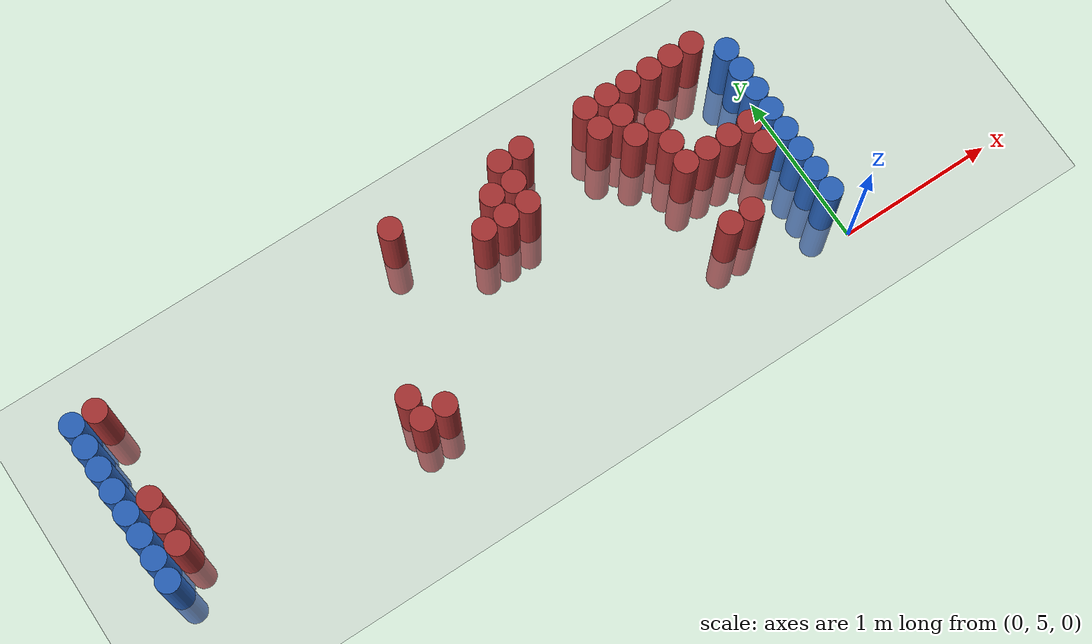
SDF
<sdf version="1.6">
 <world name="default">
  <model name="ground_plane">
   <static>1</static>
   <link name="link">
    <collision name="collision">
     <geometry><plane><normal>0 0 1</normal><size>100 100</size></plane></geometry>
     <surface><friction><ode><mu>100</mu><mu2>50</mu2></ode></friction></surface>
    </collision>
    <visual name="visual">
     <cast_shadows>0</cast_shadows>
     <geometry><plane><normal>0 0 1</normal><size>100 100</size></plane></geometry>
     <material>
      <script><uri>file://media/materials/scripts/gazebo.material</uri><name>Gazebo/Grey</name></script>
     </material>
    </visual>
   </link>
  </model>
  <model name="unit_cylinder_97">
   <static>1</static>
   <pose>-4.425000 5.325000 0.000000 0.000000 0.000000 0.000000</pose>
   <link name="link">
    <inertial>
     <mass>1</mass>
     <inertia><ixx>0.145833</ixx><ixy>0</ixy><ixz>0</ixz><iyy>0.145833</iyy><iyz>0</iyz><izz>0.125</izz></inertia>
    </inertial>
    <collision name="collision">
     <geometry><cylinder><radius>0.075000</radius><length>1</length></cylinder></geometry>
    </collision>
    <visual name="visual">
     <geometry><cylinder><radius>0.075000</radius><length>1</length></cylinder></geometry>
     <material>
      <ambient>0.152000 0.379000 0.720000 1</ambient>
      <diffuse>0.152000 0.379000 0.720000 1</diffuse>
     </material>
     <material>
      <script><name>Gazebo/Grey</name><uri>file://media/materials/scripts/gazebo.material</uri></script>
     </material>
    </visual>
   </link>
  </model>
  <model name="unit_cylinder_98">
   <static>1</static>
   <pose>-4.425000 5.475000 0.000000 0.000000 0.000000 0.000000</pose>
   <link name="link">
    <inertial>
     <mass>1</mass>
     <inertia><ixx>0.145833</ixx><ixy>0</ixy><ixz>0</ixz><iyy>0.145833</iyy><iyz>0</iyz><izz>0.125</izz></inertia>
    </inertial>
    <collision name="collision">
     <geometry><cylinder><radius>0.075000</radius><length>1</length></cylinder></geometry>
    </collision>
    <visual name="visual">
     <geometry><cylinder><radius>0.075000</radius><length>1</length></cylinder></geometry>
     <material>
      <ambient>0.152000 0.379000 0.720000 1</ambient>
      <diffuse>0.152000 0.379000 0.720000 1</diffuse>
     </material>
     <material>
      <script><name>Gazebo/Grey</name><uri>file://media/materials/scripts/gazebo.material</uri></script>
     </material>
    </visual>
   </link>
  </model>
  <model name="unit_cylinder_99">
   <static>1</static>
   <pose>-4.425000 5.625000 0.000000 0.000000 0.000000 0.000000</pose>
   <link name="link">
    <inertial>
     <mass>1</mass>
     <inertia><ixx>0.145833</ixx><ixy>0</ixy><ixz>0</ixz><iyy>0.145833</iyy><iyz>0</iyz><izz>0.125</izz></inertia>
    </inertial>
    <collision name="collision">
     <geometry><cylinder><radius>0.075000</radius><length>1</length></cylinder></geometry>
    </collision>
    <visual name="visual">
     <geometry><cylinder><radius>0.075000</radius><length>1</length></cylinder></geometry>
     <material>
      <ambient>0.152000 0.379000 0.720000 1</ambient>
      <diffuse>0.152000 0.379000 0.720000 1</diffuse>
     </material>
     <material>
      <script><name>Gazebo/Grey</name><uri>file://media/materials/scripts/gazebo.material</uri></script>
     </material>
    </visual>
   </link>
  </model>
  <model name="unit_cylinder_100">
   <static>1</static>
   <pose>-4.425000 5.775000 0.000000 0.000000 0.000000 0.000000</pose>
   <link name="link">
    <inertial>
     <mass>1</mass>
     <inertia><ixx>0.145833</ixx><ixy>0</ixy><ixz>0</ixz><iyy>0.145833</iyy><iyz>0</iyz><izz>0.125</izz></inertia>
    </inertial>
    <collision name="collision">
     <geometry><cylinder><radius>0.075000</radius><length>1</length></cylinder></geometry>
    </collision>
    <visual name="visual">
     <geometry><cylinder><radius>0.075000</radius><length>1</length></cylinder></geometry>
     <material>
      <ambient>0.152000 0.379000 0.720000 1</ambient>
      <diffuse>0.152000 0.379000 0.720000 1</diffuse>
     </material>
     <material>
      <script><name>Gazebo/Grey</name><uri>file://media/materials/scripts/gazebo.material</uri></script>
     </material>
    </visual>
   </link>
  </model>
  <model name="unit_cylinder_101">
   <static>1</static>
   <pose>-4.425000 5.925000 0.000000 0.000000 0.000000 0.000000</pose>
   <link name="link">
    <inertial>
     <mass>1</mass>
     <inertia><ixx>0.145833</ixx><ixy>0</ixy><ixz>0</ixz><iyy>0.145833</iyy><iyz>0</iyz><izz>0.125</izz></inertia>
    </inertial>
    <collision name="collision">
     <geometry><cylinder><radius>0.075000</radius><length>1</length></cylinder></geometry>
    </collision>
    <visual name="visual">
     <geometry><cylinder><radius>0.075000</radius><length>1</length></cylinder></geometry>
     <material>
      <ambient>0.152000 0.379000 0.720000 1</ambient>
      <diffuse>0.152000 0.379000 0.720000 1</diffuse>
     </material>
     <material>
      <script><name>Gazebo/Grey</name><uri>file://media/materials/scripts/gazebo.material</uri></script>
     </material>
    </visual>
   </link>
  </model>
  <model name="unit_cylinder_102">
   <static>1</static>
   <pose>-4.425000 6.075000 0.000000 0.000000 0.000000 0.000000</pose>
   <link name="link">
    <inertial>
     <mass>1</mass>
     <inertia><ixx>0.145833</ixx><ixy>0</ixy><ixz>0</ixz><iyy>0.145833</iyy><iyz>0</iyz><izz>0.125</izz></inertia>
    </inertial>
    <collision name="collision">
     <geometry><cylinder><radius>0.075000</radius><length>1</length></cylinder></geometry>
    </collision>
    <visual name="visual">
     <geometry><cylinder><radius>0.075000</radius><length>1</length></cylinder></geometry>
     <material>
      <ambient>0.152000 0.379000 0.720000 1</ambient>
      <diffuse>0.152000 0.379000 0.720000 1</diffuse>
     </material>
     <material>
      <script><name>Gazebo/Grey</name><uri>file://media/materials/scripts/gazebo.material</uri></script>
     </material>
    </visual>
   </link>
  </model>
  <model name="unit_cylinder_103">
   <static>1</static>
   <pose>-4.425000 6.225000 0.000000 0.000000 0.000000 0.000000</pose>
   <link name="link">
    <inertial>
     <mass>1</mass>
     <inertia><ixx>0.145833</ixx><ixy>0</ixy><ixz>0</ixz><iyy>0.145833</iyy><iyz>0</iyz><izz>0.125</izz></inertia>
    </inertial>
    <collision name="collision">
     <geometry><cylinder><radius>0.075000</radius><length>1</length></cylinder></geometry>
    </collision>
    <visual name="visual">
     <geometry><cylinder><radius>0.075000</radius><length>1</length></cylinder></geometry>
     <material>
      <ambient>0.152000 0.379000 0.720000 1</ambient>
      <diffuse>0.152000 0.379000 0.720000 1</diffuse>
     </material>
     <material>
      <script><name>Gazebo/Grey</name><uri>file://media/materials/scripts/gazebo.material</uri></script>
     </material>
    </visual>
   </link>
  </model>
  <model name="unit_cylinder_104">
   <static>1</static>
   <pose>-4.425000 6.375000 0.000000 0.000000 0.000000 0.000000</pose>
   <link name="link">
    <inertial>
     <mass>1</mass>
     <inertia><ixx>0.145833</ixx><ixy>0</ixy><ixz>0</ixz><iyy>0.145833</iyy><iyz>0</iyz><izz>0.125</izz></inertia>
    </inertial>
    <collision name="collision">
     <geometry><cylinder><radius>0.075000</radius><length>1</length></cylinder></geometry>
    </collision>
    <visual name="visual">
     <geometry><cylinder><radius>0.075000</radius><length>1</length></cylinder></geometry>
     <material>
      <ambient>0.152000 0.379000 0.720000 1</ambient>
      <diffuse>0.152000 0.379000 0.720000 1</diffuse>
     </material>
     <material>
      <script><name>Gazebo/Grey</name><uri>file://media/materials/scripts/gazebo.material</uri></script>
     </material>
    </visual>
   </link>
  </model>
  <model name="unit_cylinder_126">
   <static>1</static>
   <pose>-4.275000 5.475000 0.000000 0.000000 0.000000 0.000000</pose>
   <link name="link">
    <inertial>
     <mass>1</mass>
     <inertia><ixx>0.145833</ixx><ixy>0</ixy><ixz>0</ixz><iyy>0.145833</iyy><iyz>0</iyz><izz>0.125</izz></inertia>
    </inertial>
    <collision name="collision">
     <geometry><cylinder><radius>0.075000</radius><length>1</length></cylinder></geometry>
    </collision>
    <visual name="visual">
     <geometry><cylinder><radius>0.075000</radius><length>1</length></cylinder></geometry>
     <material>
      <ambient>0.648000 0.192000 0.192000 1</ambient>
      <diffuse>0.648000 0.192000 0.192000 1</diffuse>
     </material>
     <material>
      <script><name>Gazebo/Grey</name><uri>file://media/materials/scripts/gazebo.material</uri></script>
     </material>
    </visual>
   </link>
  </model>
  <model name="unit_cylinder_127">
   <static>1</static>
   <pose>-4.275000 5.625000 0.000000 0.000000 0.000000 0.000000</pose>
   <link name="link">
    <inertial>
     <mass>1</mass>
     <inertia><ixx>0.145833</ixx><ixy>0</ixy><ixz>0</ixz><iyy>0.145833</iyy><iyz>0</iyz><izz>0.125</izz></inertia>
    </inertial>
    <collision name="collision">
     <geometry><cylinder><radius>0.075000</radius><length>1</length></cylinder></geometry>
    </collision>
    <visual name="visual">
     <geometry><cylinder><radius>0.075000</radius><length>1</length></cylinder></geometry>
     <material>
      <ambient>0.648000 0.192000 0.192000 1</ambient>
      <diffuse>0.648000 0.192000 0.192000 1</diffuse>
     </material>
     <material>
      <script><name>Gazebo/Grey</name><uri>file://media/materials/scripts/gazebo.material</uri></script>
     </material>
    </visual>
   </link>
  </model>
  <model name="unit_cylinder_128">
   <static>1</static>
   <pose>-4.275000 5.775000 0.000000 0.000000 0.000000 0.000000</pose>
   <link name="link">
    <inertial>
     <mass>1</mass>
     <inertia><ixx>0.145833</ixx><ixy>0</ixy><ixz>0</ixz><iyy>0.145833</iyy><iyz>0</iyz><izz>0.125</izz></inertia>
    </inertial>
    <collision name="collision">
     <geometry><cylinder><radius>0.075000</radius><length>1</length></cylinder></geometry>
    </collision>
    <visual name="visual">
     <geometry><cylinder><radius>0.075000</radius><length>1</length></cylinder></geometry>
     <material>
      <ambient>0.648000 0.192000 0.192000 1</ambient>
      <diffuse>0.648000 0.192000 0.192000 1</diffuse>
     </material>
     <material>
      <script><name>Gazebo/Grey</name><uri>file://media/materials/scripts/gazebo.material</uri></script>
     </material>
    </visual>
   </link>
  </model>
  <model name="unit_cylinder_129">
   <static>1</static>
   <pose>-4.275000 6.375000 0.000000 0.000000 0.000000 0.000000</pose>
   <link name="link">
    <inertial>
     <mass>1</mass>
     <inertia><ixx>0.145833</ixx><ixy>0</ixy><ixz>0</ixz><iyy>0.145833</iyy><iyz>0</iyz><izz>0.125</izz></inertia>
    </inertial>
    <collision name="collision">
     <geometry><cylinder><radius>0.075000</radius><length>1</length></cylinder></geometry>
    </collision>
    <visual name="visual">
     <geometry><cylinder><radius>0.075000</radius><length>1</length></cylinder></geometry>
     <material>
      <ambient>0.648000 0.192000 0.192000 1</ambient>
      <diffuse>0.648000 0.192000 0.192000 1</diffuse>
     </material>
     <material>
      <script><name>Gazebo/Grey</name><uri>file://media/materials/scripts/gazebo.material</uri></script>
     </material>
    </visual>
   </link>
  </model>
  <model name="unit_cylinder_163">
   <static>1</static>
   <pose>-2.775000 5.325000 0.000000 0.000000 0.000000 0.000000</pose>
   <link name="link">
    <inertial>
     <mass>1</mass>
     <inertia><ixx>0.145833</ixx><ixy>0</ixy><ixz>0</ixz><iyy>0.145833</iyy><iyz>0</iyz><izz>0.125</izz></inertia>
    </inertial>
    <collision name="collision">
     <geometry><cylinder><radius>0.075000</radius><length>1</length></cylinder></geometry>
    </collision>
    <visual name="visual">
     <geometry><cylinder><radius>0.075000</radius><length>1</length></cylinder></geometry>
     <material>
      <ambient>0.648000 0.192000 0.192000 1</ambient>
      <diffuse>0.648000 0.192000 0.192000 1</diffuse>
     </material>
     <material>
      <script><name>Gazebo/Grey</name><uri>file://media/materials/scripts/gazebo.material</uri></script>
     </material>
    </visual>
   </link>
  </model>
  <model name="unit_cylinder_164">
   <static>1</static>
   <pose>-2.775000 5.475000 0.000000 0.000000 0.000000 0.000000</pose>
   <link name="link">
    <inertial>
     <mass>1</mass>
     <inertia><ixx>0.145833</ixx><ixy>0</ixy><ixz>0</ixz><iyy>0.145833</iyy><iyz>0</iyz><izz>0.125</izz></inertia>
    </inertial>
    <collision name="collision">
     <geometry><cylinder><radius>0.075000</radius><length>1</length></cylinder></geometry>
    </collision>
    <visual name="visual">
     <geometry><cylinder><radius>0.075000</radius><length>1</length></cylinder></geometry>
     <material>
      <ambient>0.648000 0.192000 0.192000 1</ambient>
      <diffuse>0.648000 0.192000 0.192000 1</diffuse>
     </material>
     <material>
      <script><name>Gazebo/Grey</name><uri>file://media/materials/scripts/gazebo.material</uri></script>
     </material>
    </visual>
   </link>
  </model>
  <model name="unit_cylinder_165">
   <static>1</static>
   <pose>-2.625000 5.325000 0.000000 0.000000 0.000000 0.000000</pose>
   <link name="link">
    <inertial>
     <mass>1</mass>
     <inertia><ixx>0.145833</ixx><ixy>0</ixy><ixz>0</ixz><iyy>0.145833</iyy><iyz>0</iyz><izz>0.125</izz></inertia>
    </inertial>
    <collision name="collision">
     <geometry><cylinder><radius>0.075000</radius><length>1</length></cylinder></geometry>
    </collision>
    <visual name="visual">
     <geometry><cylinder><radius>0.075000</radius><length>1</length></cylinder></geometry>
     <material>
      <ambient>0.648000 0.192000 0.192000 1</ambient>
      <diffuse>0.648000 0.192000 0.192000 1</diffuse>
     </material>
     <material>
      <script><name>Gazebo/Grey</name><uri>file://media/materials/scripts/gazebo.material</uri></script>
     </material>
    </visual>
   </link>
  </model>
  <model name="unit_cylinder_170">
   <static>1</static>
   <pose>-2.325000 6.375000 0.000000 0.000000 0.000000 0.000000</pose>
   <link name="link">
    <inertial>
     <mass>1</mass>
     <inertia><ixx>0.145833</ixx><ixy>0</ixy><ixz>0</ixz><iyy>0.145833</iyy><iyz>0</iyz><izz>0.125</izz></inertia>
    </inertial>
    <collision name="collision">
     <geometry><cylinder><radius>0.075000</radius><length>1</length></cylinder></geometry>
    </collision>
    <visual name="visual">
     <geometry><cylinder><radius>0.075000</radius><length>1</length></cylinder></geometry>
     <material>
      <ambient>0.648000 0.192000 0.192000 1</ambient>
      <diffuse>0.648000 0.192000 0.192000 1</diffuse>
     </material>
     <material>
      <script><name>Gazebo/Grey</name><uri>file://media/materials/scripts/gazebo.material</uri></script>
     </material>
    </visual>
   </link>
  </model>
  <model name="unit_cylinder_184">
   <static>1</static>
   <pose>-1.875000 6.075000 0.000000 0.000000 0.000000 0.000000</pose>
   <link name="link">
    <inertial>
     <mass>1</mass>
     <inertia><ixx>0.145833</ixx><ixy>0</ixy><ixz>0</ixz><iyy>0.145833</iyy><iyz>0</iyz><izz>0.125</izz></inertia>
    </inertial>
    <collision name="collision">
     <geometry><cylinder><radius>0.075000</radius><length>1</length></cylinder></geometry>
    </collision>
    <visual name="visual">
     <geometry><cylinder><radius>0.075000</radius><length>1</length></cylinder></geometry>
     <material>
      <ambient>0.648000 0.192000 0.192000 1</ambient>
      <diffuse>0.648000 0.192000 0.192000 1</diffuse>
     </material>
     <material>
      <script><name>Gazebo/Grey</name><uri>file://media/materials/scripts/gazebo.material</uri></script>
     </material>
    </visual>
   </link>
  </model>
  <model name="unit_cylinder_187">
   <static>1</static>
   <pose>-1.725000 6.075000 0.000000 0.000000 0.000000 0.000000</pose>
   <link name="link">
    <inertial>
     <mass>1</mass>
     <inertia><ixx>0.145833</ixx><ixy>0</ixy><ixz>0</ixz><iyy>0.145833</iyy><iyz>0</iyz><izz>0.125</izz></inertia>
    </inertial>
    <collision name="collision">
     <geometry><cylinder><radius>0.075000</radius><length>1</length></cylinder></geometry>
    </collision>
    <visual name="visual">
     <geometry><cylinder><radius>0.075000</radius><length>1</length></cylinder></geometry>
     <material>
      <ambient>0.648000 0.192000 0.192000 1</ambient>
      <diffuse>0.648000 0.192000 0.192000 1</diffuse>
     </material>
     <material>
      <script><name>Gazebo/Grey</name><uri>file://media/materials/scripts/gazebo.material</uri></script>
     </material>
    </visual>
   </link>
  </model>
  <model name="unit_cylinder_188">
   <static>1</static>
   <pose>-1.725000 6.225000 0.000000 0.000000 0.000000 0.000000</pose>
   <link name="link">
    <inertial>
     <mass>1</mass>
     <inertia><ixx>0.145833</ixx><ixy>0</ixy><ixz>0</ixz><iyy>0.145833</iyy><iyz>0</iyz><izz>0.125</izz></inertia>
    </inertial>
    <collision name="collision">
     <geometry><cylinder><radius>0.075000</radius><length>1</length></cylinder></geometry>
    </collision>
    <visual name="visual">
     <geometry><cylinder><radius>0.075000</radius><length>1</length></cylinder></geometry>
     <material>
      <ambient>0.648000 0.192000 0.192000 1</ambient>
      <diffuse>0.648000 0.192000 0.192000 1</diffuse>
     </material>
     <material>
      <script><name>Gazebo/Grey</name><uri>file://media/materials/scripts/gazebo.material</uri></script>
     </material>
    </visual>
   </link>
  </model>
  <model name="unit_cylinder_190">
   <static>1</static>
   <pose>-1.575000 6.075000 0.000000 0.000000 0.000000 0.000000</pose>
   <link name="link">
    <inertial>
     <mass>1</mass>
     <inertia><ixx>0.145833</ixx><ixy>0</ixy><ixz>0</ixz><iyy>0.145833</iyy><iyz>0</iyz><izz>0.125</izz></inertia>
    </inertial>
    <collision name="collision">
     <geometry><cylinder><radius>0.075000</radius><length>1</length></cylinder></geometry>
    </collision>
    <visual name="visual">
     <geometry><cylinder><radius>0.075000</radius><length>1</length></cylinder></geometry>
     <material>
      <ambient>0.648000 0.192000 0.192000 1</ambient>
      <diffuse>0.648000 0.192000 0.192000 1</diffuse>
     </material>
     <material>
      <script><name>Gazebo/Grey</name><uri>file://media/materials/scripts/gazebo.material</uri></script>
     </material>
    </visual>
   </link>
  </model>
  <model name="unit_cylinder_191">
   <static>1</static>
   <pose>-1.575000 6.225000 0.000000 0.000000 0.000000 0.000000</pose>
   <link name="link">
    <inertial>
     <mass>1</mass>
     <inertia><ixx>0.145833</ixx><ixy>0</ixy><ixz>0</ixz><iyy>0.145833</iyy><iyz>0</iyz><izz>0.125</izz></inertia>
    </inertial>
    <collision name="collision">
     <geometry><cylinder><radius>0.075000</radius><length>1</length></cylinder></geometry>
    </collision>
    <visual name="visual">
     <geometry><cylinder><radius>0.075000</radius><length>1</length></cylinder></geometry>
     <material>
      <ambient>0.648000 0.192000 0.192000 1</ambient>
      <diffuse>0.648000 0.192000 0.192000 1</diffuse>
     </material>
     <material>
      <script><name>Gazebo/Grey</name><uri>file://media/materials/scripts/gazebo.material</uri></script>
     </material>
    </visual>
   </link>
  </model>
  <model name="unit_cylinder_192">
   <static>1</static>
   <pose>-1.575000 6.375000 0.000000 0.000000 0.000000 0.000000</pose>
   <link name="link">
    <inertial>
     <mass>1</mass>
     <inertia><ixx>0.145833</ixx><ixy>0</ixy><ixz>0</ixz><iyy>0.145833</iyy><iyz>0</iyz><izz>0.125</izz></inertia>
    </inertial>
    <collision name="collision">
     <geometry><cylinder><radius>0.075000</radius><length>1</length></cylinder></geometry>
    </collision>
    <visual name="visual">
     <geometry><cylinder><radius>0.075000</radius><length>1</length></cylinder></geometry>
     <material>
      <ambient>0.648000 0.192000 0.192000 1</ambient>
      <diffuse>0.648000 0.192000 0.192000 1</diffuse>
     </material>
     <material>
      <script><name>Gazebo/Grey</name><uri>file://media/materials/scripts/gazebo.material</uri></script>
     </material>
    </visual>
   </link>
  </model>
  <model name="unit_cylinder_195">
   <static>1</static>
   <pose>-1.425000 6.375000 0.000000 0.000000 0.000000 0.000000</pose>
   <link name="link">
    <inertial>
     <mass>1</mass>
     <inertia><ixx>0.145833</ixx><ixy>0</ixy><ixz>0</ixz><iyy>0.145833</iyy><iyz>0</iyz><izz>0.125</izz></inertia>
    </inertial>
    <collision name="collision">
     <geometry><cylinder><radius>0.075000</radius><length>1</length></cylinder></geometry>
    </collision>
    <visual name="visual">
     <geometry><cylinder><radius>0.075000</radius><length>1</length></cylinder></geometry>
     <material>
      <ambient>0.648000 0.192000 0.192000 1</ambient>
      <diffuse>0.648000 0.192000 0.192000 1</diffuse>
     </material>
     <material>
      <script><name>Gazebo/Grey</name><uri>file://media/materials/scripts/gazebo.material</uri></script>
     </material>
    </visual>
   </link>
  </model>
  <model name="unit_cylinder_208">
   <static>1</static>
   <pose>-0.975000 6.225000 0.000000 0.000000 0.000000 0.000000</pose>
   <link name="link">
    <inertial>
     <mass>1</mass>
     <inertia><ixx>0.145833</ixx><ixy>0</ixy><ixz>0</ixz><iyy>0.145833</iyy><iyz>0</iyz><izz>0.125</izz></inertia>
    </inertial>
    <collision name="collision">
     <geometry><cylinder><radius>0.075000</radius><length>1</length></cylinder></geometry>
    </collision>
    <visual name="visual">
     <geometry><cylinder><radius>0.075000</radius><length>1</length></cylinder></geometry>
     <material>
      <ambient>0.648000 0.192000 0.192000 1</ambient>
      <diffuse>0.648000 0.192000 0.192000 1</diffuse>
     </material>
     <material>
      <script><name>Gazebo/Grey</name><uri>file://media/materials/scripts/gazebo.material</uri></script>
     </material>
    </visual>
   </link>
  </model>
  <model name="unit_cylinder_209">
   <static>1</static>
   <pose>-0.975000 6.375000 0.000000 0.000000 0.000000 0.000000</pose>
   <link name="link">
    <inertial>
     <mass>1</mass>
     <inertia><ixx>0.145833</ixx><ixy>0</ixy><ixz>0</ixz><iyy>0.145833</iyy><iyz>0</iyz><izz>0.125</izz></inertia>
    </inertial>
    <collision name="collision">
     <geometry><cylinder><radius>0.075000</radius><length>1</length></cylinder></geometry>
    </collision>
    <visual name="visual">
     <geometry><cylinder><radius>0.075000</radius><length>1</length></cylinder></geometry>
     <material>
      <ambient>0.648000 0.192000 0.192000 1</ambient>
      <diffuse>0.648000 0.192000 0.192000 1</diffuse>
     </material>
     <material>
      <script><name>Gazebo/Grey</name><uri>file://media/materials/scripts/gazebo.material</uri></script>
     </material>
    </visual>
   </link>
  </model>
  <model name="unit_cylinder_222">
   <static>1</static>
   <pose>-0.825000 6.075000 0.000000 0.000000 0.000000 0.000000</pose>
   <link name="link">
    <inertial>
     <mass>1</mass>
     <inertia><ixx>0.145833</ixx><ixy>0</ixy><ixz>0</ixz><iyy>0.145833</iyy><iyz>0</iyz><izz>0.125</izz></inertia>
    </inertial>
    <collision name="collision">
     <geometry><cylinder><radius>0.075000</radius><length>1</length></cylinder></geometry>
    </collision>
    <visual name="visual">
     <geometry><cylinder><radius>0.075000</radius><length>1</length></cylinder></geometry>
     <material>
      <ambient>0.648000 0.192000 0.192000 1</ambient>
      <diffuse>0.648000 0.192000 0.192000 1</diffuse>
     </material>
     <material>
      <script><name>Gazebo/Grey</name><uri>file://media/materials/scripts/gazebo.material</uri></script>
     </material>
    </visual>
   </link>
  </model>
  <model name="unit_cylinder_223">
   <static>1</static>
   <pose>-0.825000 6.225000 0.000000 0.000000 0.000000 0.000000</pose>
   <link name="link">
    <inertial>
     <mass>1</mass>
     <inertia><ixx>0.145833</ixx><ixy>0</ixy><ixz>0</ixz><iyy>0.145833</iyy><iyz>0</iyz><izz>0.125</izz></inertia>
    </inertial>
    <collision name="collision">
     <geometry><cylinder><radius>0.075000</radius><length>1</length></cylinder></geometry>
    </collision>
    <visual name="visual">
     <geometry><cylinder><radius>0.075000</radius><length>1</length></cylinder></geometry>
     <material>
      <ambient>0.648000 0.192000 0.192000 1</ambient>
      <diffuse>0.648000 0.192000 0.192000 1</diffuse>
     </material>
     <material>
      <script><name>Gazebo/Grey</name><uri>file://media/materials/scripts/gazebo.material</uri></script>
     </material>
    </visual>
   </link>
  </model>
  <model name="unit_cylinder_224">
   <static>1</static>
   <pose>-0.825000 6.375000 0.000000 0.000000 0.000000 0.000000</pose>
   <link name="link">
    <inertial>
     <mass>1</mass>
     <inertia><ixx>0.145833</ixx><ixy>0</ixy><ixz>0</ixz><iyy>0.145833</iyy><iyz>0</iyz><izz>0.125</izz></inertia>
    </inertial>
    <collision name="collision">
     <geometry><cylinder><radius>0.075000</radius><length>1</length></cylinder></geometry>
    </collision>
    <visual name="visual">
     <geometry><cylinder><radius>0.075000</radius><length>1</length></cylinder></geometry>
     <material>
      <ambient>0.648000 0.192000 0.192000 1</ambient>
      <diffuse>0.648000 0.192000 0.192000 1</diffuse>
     </material>
     <material>
      <script><name>Gazebo/Grey</name><uri>file://media/materials/scripts/gazebo.material</uri></script>
     </material>
    </visual>
   </link>
  </model>
  <model name="unit_cylinder_235">
   <static>1</static>
   <pose>-0.675000 5.325000 0.000000 0.000000 0.000000 0.000000</pose>
   <link name="link">
    <inertial>
     <mass>1</mass>
     <inertia><ixx>0.145833</ixx><ixy>0</ixy><ixz>0</ixz><iyy>0.145833</iyy><iyz>0</iyz><izz>0.125</izz></inertia>
    </inertial>
    <collision name="collision">
     <geometry><cylinder><radius>0.075000</radius><length>1</length></cylinder></geometry>
    </collision>
    <visual name="visual">
     <geometry><cylinder><radius>0.075000</radius><length>1</length></cylinder></geometry>
     <material>
      <ambient>0.648000 0.192000 0.192000 1</ambient>
      <diffuse>0.648000 0.192000 0.192000 1</diffuse>
     </material>
     <material>
      <script><name>Gazebo/Grey</name><uri>file://media/materials/scripts/gazebo.material</uri></script>
     </material>
    </visual>
   </link>
  </model>
  <model name="unit_cylinder_236">
   <static>1</static>
   <pose>-0.675000 5.775000 0.000000 0.000000 0.000000 0.000000</pose>
   <link name="link">
    <inertial>
     <mass>1</mass>
     <inertia><ixx>0.145833</ixx><ixy>0</ixy><ixz>0</ixz><iyy>0.145833</iyy><iyz>0</iyz><izz>0.125</izz></inertia>
    </inertial>
    <collision name="collision">
     <geometry><cylinder><radius>0.075000</radius><length>1</length></cylinder></geometry>
    </collision>
    <visual name="visual">
     <geometry><cylinder><radius>0.075000</radius><length>1</length></cylinder></geometry>
     <material>
      <ambient>0.648000 0.192000 0.192000 1</ambient>
      <diffuse>0.648000 0.192000 0.192000 1</diffuse>
     </material>
     <material>
      <script><name>Gazebo/Grey</name><uri>file://media/materials/scripts/gazebo.material</uri></script>
     </material>
    </visual>
   </link>
  </model>
  <model name="unit_cylinder_237">
   <static>1</static>
   <pose>-0.675000 5.925000 0.000000 0.000000 0.000000 0.000000</pose>
   <link name="link">
    <inertial>
     <mass>1</mass>
     <inertia><ixx>0.145833</ixx><ixy>0</ixy><ixz>0</ixz><iyy>0.145833</iyy><iyz>0</iyz><izz>0.125</izz></inertia>
    </inertial>
    <collision name="collision">
     <geometry><cylinder><radius>0.075000</radius><length>1</length></cylinder></geometry>
    </collision>
    <visual name="visual">
     <geometry><cylinder><radius>0.075000</radius><length>1</length></cylinder></geometry>
     <material>
      <ambient>0.648000 0.192000 0.192000 1</ambient>
      <diffuse>0.648000 0.192000 0.192000 1</diffuse>
     </material>
     <material>
      <script><name>Gazebo/Grey</name><uri>file://media/materials/scripts/gazebo.material</uri></script>
     </material>
    </visual>
   </link>
  </model>
  <model name="unit_cylinder_238">
   <static>1</static>
   <pose>-0.675000 6.075000 0.000000 0.000000 0.000000 0.000000</pose>
   <link name="link">
    <inertial>
     <mass>1</mass>
     <inertia><ixx>0.145833</ixx><ixy>0</ixy><ixz>0</ixz><iyy>0.145833</iyy><iyz>0</iyz><izz>0.125</izz></inertia>
    </inertial>
    <collision name="collision">
     <geometry><cylinder><radius>0.075000</radius><length>1</length></cylinder></geometry>
    </collision>
    <visual name="visual">
     <geometry><cylinder><radius>0.075000</radius><length>1</length></cylinder></geometry>
     <material>
      <ambient>0.648000 0.192000 0.192000 1</ambient>
      <diffuse>0.648000 0.192000 0.192000 1</diffuse>
     </material>
     <material>
      <script><name>Gazebo/Grey</name><uri>file://media/materials/scripts/gazebo.material</uri></script>
     </material>
    </visual>
   </link>
  </model>
  <model name="unit_cylinder_239">
   <static>1</static>
   <pose>-0.675000 6.375000 0.000000 0.000000 0.000000 0.000000</pose>
   <link name="link">
    <inertial>
     <mass>1</mass>
     <inertia><ixx>0.145833</ixx><ixy>0</ixy><ixz>0</ixz><iyy>0.145833</iyy><iyz>0</iyz><izz>0.125</izz></inertia>
    </inertial>
    <collision name="collision">
     <geometry><cylinder><radius>0.075000</radius><length>1</length></cylinder></geometry>
    </collision>
    <visual name="visual">
     <geometry><cylinder><radius>0.075000</radius><length>1</length></cylinder></geometry>
     <material>
      <ambient>0.648000 0.192000 0.192000 1</ambient>
      <diffuse>0.648000 0.192000 0.192000 1</diffuse>
     </material>
     <material>
      <script><name>Gazebo/Grey</name><uri>file://media/materials/scripts/gazebo.material</uri></script>
     </material>
    </visual>
   </link>
  </model>
  <model name="unit_cylinder_243">
   <static>1</static>
   <pose>-0.525000 5.325000 0.000000 0.000000 0.000000 0.000000</pose>
   <link name="link">
    <inertial>
     <mass>1</mass>
     <inertia><ixx>0.145833</ixx><ixy>0</ixy><ixz>0</ixz><iyy>0.145833</iyy><iyz>0</iyz><izz>0.125</izz></inertia>
    </inertial>
    <collision name="collision">
     <geometry><cylinder><radius>0.075000</radius><length>1</length></cylinder></geometry>
    </collision>
    <visual name="visual">
     <geometry><cylinder><radius>0.075000</radius><length>1</length></cylinder></geometry>
     <material>
      <ambient>0.648000 0.192000 0.192000 1</ambient>
      <diffuse>0.648000 0.192000 0.192000 1</diffuse>
     </material>
     <material>
      <script><name>Gazebo/Grey</name><uri>file://media/materials/scripts/gazebo.material</uri></script>
     </material>
    </visual>
   </link>
  </model>
  <model name="unit_cylinder_244">
   <static>1</static>
   <pose>-0.525000 5.775000 0.000000 0.000000 0.000000 0.000000</pose>
   <link name="link">
    <inertial>
     <mass>1</mass>
     <inertia><ixx>0.145833</ixx><ixy>0</ixy><ixz>0</ixz><iyy>0.145833</iyy><iyz>0</iyz><izz>0.125</izz></inertia>
    </inertial>
    <collision name="collision">
     <geometry><cylinder><radius>0.075000</radius><length>1</length></cylinder></geometry>
    </collision>
    <visual name="visual">
     <geometry><cylinder><radius>0.075000</radius><length>1</length></cylinder></geometry>
     <material>
      <ambient>0.648000 0.192000 0.192000 1</ambient>
      <diffuse>0.648000 0.192000 0.192000 1</diffuse>
     </material>
     <material>
      <script><name>Gazebo/Grey</name><uri>file://media/materials/scripts/gazebo.material</uri></script>
     </material>
    </visual>
   </link>
  </model>
  <model name="unit_cylinder_245">
   <static>1</static>
   <pose>-0.525000 6.375000 0.000000 0.000000 0.000000 0.000000</pose>
   <link name="link">
    <inertial>
     <mass>1</mass>
     <inertia><ixx>0.145833</ixx><ixy>0</ixy><ixz>0</ixz><iyy>0.145833</iyy><iyz>0</iyz><izz>0.125</izz></inertia>
    </inertial>
    <collision name="collision">
     <geometry><cylinder><radius>0.075000</radius><length>1</length></cylinder></geometry>
    </collision>
    <visual name="visual">
     <geometry><cylinder><radius>0.075000</radius><length>1</length></cylinder></geometry>
     <material>
      <ambient>0.648000 0.192000 0.192000 1</ambient>
      <diffuse>0.648000 0.192000 0.192000 1</diffuse>
     </material>
     <material>
      <script><name>Gazebo/Grey</name><uri>file://media/materials/scripts/gazebo.material</uri></script>
     </material>
    </visual>
   </link>
  </model>
  <model name="unit_cylinder_248">
   <static>1</static>
   <pose>-0.375000 5.775000 0.000000 0.000000 0.000000 0.000000</pose>
   <link name="link">
    <inertial>
     <mass>1</mass>
     <inertia><ixx>0.145833</ixx><ixy>0</ixy><ixz>0</ixz><iyy>0.145833</iyy><iyz>0</iyz><izz>0.125</izz></inertia>
    </inertial>
    <collision name="collision">
     <geometry><cylinder><radius>0.075000</radius><length>1</length></cylinder></geometry>
    </collision>
    <visual name="visual">
     <geometry><cylinder><radius>0.075000</radius><length>1</length></cylinder></geometry>
     <material>
      <ambient>0.648000 0.192000 0.192000 1</ambient>
      <diffuse>0.648000 0.192000 0.192000 1</diffuse>
     </material>
     <material>
      <script><name>Gazebo/Grey</name><uri>file://media/materials/scripts/gazebo.material</uri></script>
     </material>
    </visual>
   </link>
  </model>
  <model name="unit_cylinder_249">
   <static>1</static>
   <pose>-0.375000 6.375000 0.000000 0.000000 0.000000 0.000000</pose>
   <link name="link">
    <inertial>
     <mass>1</mass>
     <inertia><ixx>0.145833</ixx><ixy>0</ixy><ixz>0</ixz><iyy>0.145833</iyy><iyz>0</iyz><izz>0.125</izz></inertia>
    </inertial>
    <collision name="collision">
     <geometry><cylinder><radius>0.075000</radius><length>1</length></cylinder></geometry>
    </collision>
    <visual name="visual">
     <geometry><cylinder><radius>0.075000</radius><length>1</length></cylinder></geometry>
     <material>
      <ambient>0.648000 0.192000 0.192000 1</ambient>
      <diffuse>0.648000 0.192000 0.192000 1</diffuse>
     </material>
     <material>
      <script><name>Gazebo/Grey</name><uri>file://media/materials/scripts/gazebo.material</uri></script>
     </material>
    </visual>
   </link>
  </model>
  <model name="unit_cylinder_252">
   <static>1</static>
   <pose>-0.225000 5.625000 0.000000 0.000000 0.000000 0.000000</pose>
   <link name="link">
    <inertial>
     <mass>1</mass>
     <inertia><ixx>0.145833</ixx><ixy>0</ixy><ixz>0</ixz><iyy>0.145833</iyy><iyz>0</iyz><izz>0.125</izz></inertia>
    </inertial>
    <collision name="collision">
     <geometry><cylinder><radius>0.075000</radius><length>1</length></cylinder></geometry>
    </collision>
    <visual name="visual">
     <geometry><cylinder><radius>0.075000</radius><length>1</length></cylinder></geometry>
     <material>
      <ambient>0.648000 0.192000 0.192000 1</ambient>
      <diffuse>0.648000 0.192000 0.192000 1</diffuse>
     </material>
     <material>
      <script><name>Gazebo/Grey</name><uri>file://media/materials/scripts/gazebo.material</uri></script>
     </material>
    </visual>
   </link>
  </model>
  <model name="unit_cylinder_253">
   <static>1</static>
   <pose>-0.225000 5.775000 0.000000 0.000000 0.000000 0.000000</pose>
   <link name="link">
    <inertial>
     <mass>1</mass>
     <inertia><ixx>0.145833</ixx><ixy>0</ixy><ixz>0</ixz><iyy>0.145833</iyy><iyz>0</iyz><izz>0.125</izz></inertia>
    </inertial>
    <collision name="collision">
     <geometry><cylinder><radius>0.075000</radius><length>1</length></cylinder></geometry>
    </collision>
    <visual name="visual">
     <geometry><cylinder><radius>0.075000</radius><length>1</length></cylinder></geometry>
     <material>
      <ambient>0.648000 0.192000 0.192000 1</ambient>
      <diffuse>0.648000 0.192000 0.192000 1</diffuse>
     </material>
     <material>
      <script><name>Gazebo/Grey</name><uri>file://media/materials/scripts/gazebo.material</uri></script>
     </material>
    </visual>
   </link>
  </model>
  <model name="unit_cylinder_254">
   <static>1</static>
   <pose>-0.225000 6.375000 0.000000 0.000000 0.000000 0.000000</pose>
   <link name="link">
    <inertial>
     <mass>1</mass>
     <inertia><ixx>0.145833</ixx><ixy>0</ixy><ixz>0</ixz><iyy>0.145833</iyy><iyz>0</iyz><izz>0.125</izz></inertia>
    </inertial>
    <collision name="collision">
     <geometry><cylinder><radius>0.075000</radius><length>1</length></cylinder></geometry>
    </collision>
    <visual name="visual">
     <geometry><cylinder><radius>0.075000</radius><length>1</length></cylinder></geometry>
     <material>
      <ambient>0.648000 0.192000 0.192000 1</ambient>
      <diffuse>0.648000 0.192000 0.192000 1</diffuse>
     </material>
     <material>
      <script><name>Gazebo/Grey</name><uri>file://media/materials/scripts/gazebo.material</uri></script>
     </material>
    </visual>
   </link>
  </model>
  <model name="unit_cylinder_264">
   <static>1</static>
   <pose>-0.075000 5.175000 0.000000 0.000000 0.000000 0.000000</pose>
   <link name="link">
    <inertial>
     <mass>1</mass>
     <inertia><ixx>0.145833</ixx><ixy>0</ixy><ixz>0</ixz><iyy>0.145833</iyy><iyz>0</iyz><izz>0.125</izz></inertia>
    </inertial>
    <collision name="collision">
     <geometry><cylinder><radius>0.075000</radius><length>1</length></cylinder></geometry>
    </collision>
    <visual name="visual">
     <geometry><cylinder><radius>0.075000</radius><length>1</length></cylinder></geometry>
     <material>
      <ambient>0.152000 0.379000 0.720000 1</ambient>
      <diffuse>0.152000 0.379000 0.720000 1</diffuse>
     </material>
     <material>
      <script><name>Gazebo/Grey</name><uri>file://media/materials/scripts/gazebo.material</uri></script>
     </material>
    </visual>
   </link>
  </model>
  <model name="unit_cylinder_265">
   <static>1</static>
   <pose>-0.075000 5.325000 0.000000 0.000000 0.000000 0.000000</pose>
   <link name="link">
    <inertial>
     <mass>1</mass>
     <inertia><ixx>0.145833</ixx><ixy>0</ixy><ixz>0</ixz><iyy>0.145833</iyy><iyz>0</iyz><izz>0.125</izz></inertia>
    </inertial>
    <collision name="collision">
     <geometry><cylinder><radius>0.075000</radius><length>1</length></cylinder></geometry>
    </collision>
    <visual name="visual">
     <geometry><cylinder><radius>0.075000</radius><length>1</length></cylinder></geometry>
     <material>
      <ambient>0.152000 0.379000 0.720000 1</ambient>
      <diffuse>0.152000 0.379000 0.720000 1</diffuse>
     </material>
     <material>
      <script><name>Gazebo/Grey</name><uri>file://media/materials/scripts/gazebo.material</uri></script>
     </material>
    </visual>
   </link>
  </model>
  <model name="unit_cylinder_266">
   <static>1</static>
   <pose>-0.075000 5.475000 0.000000 0.000000 0.000000 0.000000</pose>
   <link name="link">
    <inertial>
     <mass>1</mass>
     <inertia><ixx>0.145833</ixx><ixy>0</ixy><ixz>0</ixz><iyy>0.145833</iyy><iyz>0</iyz><izz>0.125</izz></inertia>
    </inertial>
    <collision name="collision">
     <geometry><cylinder><radius>0.075000</radius><length>1</length></cylinder></geometry>
    </collision>
    <visual name="visual">
     <geometry><cylinder><radius>0.075000</radius><length>1</length></cylinder></geometry>
     <material>
      <ambient>0.152000 0.379000 0.720000 1</ambient>
      <diffuse>0.152000 0.379000 0.720000 1</diffuse>
     </material>
     <material>
      <script><name>Gazebo/Grey</name><uri>file://media/materials/scripts/gazebo.material</uri></script>
     </material>
    </visual>
   </link>
  </model>
  <model name="unit_cylinder_267">
   <static>1</static>
   <pose>-0.075000 5.625000 0.000000 0.000000 0.000000 0.000000</pose>
   <link name="link">
    <inertial>
     <mass>1</mass>
     <inertia><ixx>0.145833</ixx><ixy>0</ixy><ixz>0</ixz><iyy>0.145833</iyy><iyz>0</iyz><izz>0.125</izz></inertia>
    </inertial>
    <collision name="collision">
     <geometry><cylinder><radius>0.075000</radius><length>1</length></cylinder></geometry>
    </collision>
    <visual name="visual">
     <geometry><cylinder><radius>0.075000</radius><length>1</length></cylinder></geometry>
     <material>
      <ambient>0.152000 0.379000 0.720000 1</ambient>
      <diffuse>0.152000 0.379000 0.720000 1</diffuse>
     </material>
     <material>
      <script><name>Gazebo/Grey</name><uri>file://media/materials/scripts/gazebo.material</uri></script>
     </material>
    </visual>
   </link>
  </model>
  <model name="unit_cylinder_268">
   <static>1</static>
   <pose>-0.075000 5.775000 0.000000 0.000000 0.000000 0.000000</pose>
   <link name="link">
    <inertial>
     <mass>1</mass>
     <inertia><ixx>0.145833</ixx><ixy>0</ixy><ixz>0</ixz><iyy>0.145833</iyy><iyz>0</iyz><izz>0.125</izz></inertia>
    </inertial>
    <collision name="collision">
     <geometry><cylinder><radius>0.075000</radius><length>1</length></cylinder></geometry>
    </collision>
    <visual name="visual">
     <geometry><cylinder><radius>0.075000</radius><length>1</length></cylinder></geometry>
     <material>
      <ambient>0.152000 0.379000 0.720000 1</ambient>
      <diffuse>0.152000 0.379000 0.720000 1</diffuse>
     </material>
     <material>
      <script><name>Gazebo/Grey</name><uri>file://media/materials/scripts/gazebo.material</uri></script>
     </material>
    </visual>
   </link>
  </model>
  <model name="unit_cylinder_269">
   <static>1</static>
   <pose>-0.075000 5.925000 0.000000 0.000000 0.000000 0.000000</pose>
   <link name="link">
    <inertial>
     <mass>1</mass>
     <inertia><ixx>0.145833</ixx><ixy>0</ixy><ixz>0</ixz><iyy>0.145833</iyy><iyz>0</iyz><izz>0.125</izz></inertia>
    </inertial>
    <collision name="collision">
     <geometry><cylinder><radius>0.075000</radius><length>1</length></cylinder></geometry>
    </collision>
    <visual name="visual">
     <geometry><cylinder><radius>0.075000</radius><length>1</length></cylinder></geometry>
     <material>
      <ambient>0.152000 0.379000 0.720000 1</ambient>
      <diffuse>0.152000 0.379000 0.720000 1</diffuse>
     </material>
     <material>
      <script><name>Gazebo/Grey</name><uri>file://media/materials/scripts/gazebo.material</uri></script>
     </material>
    </visual>
   </link>
  </model>
  <model name="unit_cylinder_270">
   <static>1</static>
   <pose>-0.075000 6.075000 0.000000 0.000000 0.000000 0.000000</pose>
   <link name="link">
    <inertial>
     <mass>1</mass>
     <inertia><ixx>0.145833</ixx><ixy>0</ixy><ixz>0</ixz><iyy>0.145833</iyy><iyz>0</iyz><izz>0.125</izz></inertia>
    </inertial>
    <collision name="collision">
     <geometry><cylinder><radius>0.075000</radius><length>1</length></cylinder></geometry>
    </collision>
    <visual name="visual">
     <geometry><cylinder><radius>0.075000</radius><length>1</length></cylinder></geometry>
     <material>
      <ambient>0.152000 0.379000 0.720000 1</ambient>
      <diffuse>0.152000 0.379000 0.720000 1</diffuse>
     </material>
     <material>
      <script><name>Gazebo/Grey</name><uri>file://media/materials/scripts/gazebo.material</uri></script>
     </material>
    </visual>
   </link>
  </model>
  <model name="unit_cylinder_271">
   <static>1</static>
   <pose>-0.075000 6.225000 0.000000 0.000000 0.000000 0.000000</pose>
   <link name="link">
    <inertial>
     <mass>1</mass>
     <inertia><ixx>0.145833</ixx><ixy>0</ixy><ixz>0</ixz><iyy>0.145833</iyy><iyz>0</iyz><izz>0.125</izz></inertia>
    </inertial>
    <collision name="collision">
     <geometry><cylinder><radius>0.075000</radius><length>1</length></cylinder></geometry>
    </collision>
    <visual name="visual">
     <geometry><cylinder><radius>0.075000</radius><length>1</length></cylinder></geometry>
     <material>
      <ambient>0.152000 0.379000 0.720000 1</ambient>
      <diffuse>0.152000 0.379000 0.720000 1</diffuse>
     </material>
     <material>
      <script><name>Gazebo/Grey</name><uri>file://media/materials/scripts/gazebo.material</uri></script>
     </material>
    </visual>
   </link>
  </model>
 </world>
</sdf>
